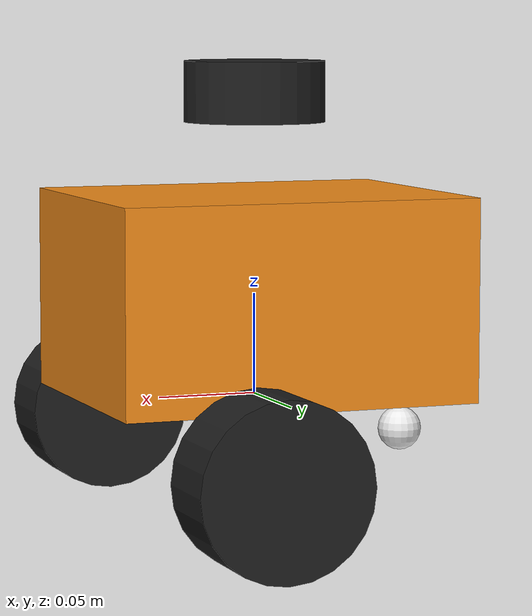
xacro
<?xml version="1.0"?>
<!-- Basic differential drive mobile base -->
<robot xmlns:xacro="http://www.ros.org/wiki/xacro" name="diffdrive_robot">
  <xacro:arg name="prefix" default="" />

  <xacro:include filename="$(find kuzya_bot)/urdf/diffbot_description.urdf.xacro" />

  <!-- Import Rviz colors -->
  <xacro:include filename="$(find kuzya_bot)/urdf/diffbot.materials.xacro" />

  <!-- Import diffbot ros2_control description -->
  <xacro:include filename="$(find kuzya_bot)/ros2_control/diffbot.ros2_control.xacro" />

  <xacro:diffbot prefix="$(arg prefix)" />

  <xacro:diffbot_ros2_control
    name="DiffBot" prefix="$(arg prefix)" />

</robot>

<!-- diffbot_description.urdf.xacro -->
<robot xmlns:xacro="http://www.ros.org/wiki/xacro">

  <xacro:macro name="diffbot" params="prefix">

  <!-- Constants for robot dimensions -->
  <xacro:property name="PI" value="3.1415926535897931"/>
  <xacro:property name="base_mass" value="0.3" /> <!-- arbitrary value for base mass -->
  <xacro:property name="base_width" value="0.18" />
  <xacro:property name="base_length" value="0.14" />
  <xacro:property name="base_height" value="0.1" />
  <xacro:property name="wheel_mass" value="0.3" /> <!-- arbitrary value for wheel mass -->
  <xacro:property name="wheel_len" value="0.040" />
  <xacro:property name="wheel_radius" value="0.042" />
  <xacro:property name="caster_wheel_mass" value="0.1" /> <!-- arbitrary value for caster wheel mass -->
  <xacro:property name="caster_wheel_radius" value="0.011" />
  <xacro:property name="z_offset" value="-0.022" /> <!-- Space btw top of beam and the each joint -->
  <xacro:property name="wheel_x_offset" value="0.04" />
  <xacro:property name="wheel_y_offset" value="0.03" />

  <!-- Base Link -->
  <link name="${prefix}base_link">
    <collision>
      <origin xyz="0 0 0" rpy="0 0 0"/>
      <geometry>
        <box size="${base_width} ${base_length} ${base_height}"/>
      </geometry>
    </collision>

    <visual>
      <origin xyz="0 0 ${base_height/2}" rpy="0 0 0"/>
      <geometry>
        <box size="${base_width} ${base_length} ${base_height}"/>
      </geometry>
      <material name="orange"/>
    </visual>

    <inertial>
      <origin xyz="0 0 0" rpy="0 0 0"/>
      <mass value="${base_mass}"/>
      <inertia
        ixx="${base_mass / 12.0 * (base_length*base_length + base_height*base_height)}" ixy="0.0" ixz="0.0"
        iyy="${base_mass / 12.0 * (base_height*base_height + base_width*base_width)}" iyz="0.0"
        izz="${base_mass / 12.0 * (base_width*base_width + base_length*base_length)}"/>
      </inertial>
    </link>

    <joint name="${prefix}left_wheel_joint" type="continuous">
      <parent link="${prefix}base_link"/>
      <child link="${prefix}left_wheel"/>
      <origin xyz="${wheel_x_offset} -${wheel_x_offset+base_width/2} ${z_offset}" rpy="0 0 0"/>
      <axis xyz="0 1 0"/>
      <dynamics damping="0.2"/>
      <limit effort="100" velocity="1.0"/>
    </joint>

    <!-- left wheel Link -->
    <link name="${prefix}left_wheel">
      <collision>
        <origin xyz="0 0 0" rpy="${PI/2} 0 0"/>
        <geometry>
          <cylinder length="${wheel_len}" radius="${wheel_radius}"/>
        </geometry>
      </collision>

      <visual>
        <origin xyz="0 0 0" rpy="${PI/2} 0 0"/>
        <geometry>
          <cylinder length="${wheel_len}" radius="${wheel_radius}"/>
        </geometry>
        <material name="black"/>
      </visual>

      <inertial>
        <origin xyz="0 0 0" rpy="${PI/2} 0 0"/>
        <mass value="${wheel_mass}"/>
        <inertia
          ixx="${wheel_mass / 12.0 * (3*wheel_radius*wheel_radius + wheel_len*wheel_len)}" ixy="0.0" ixz="0.0"
          iyy="${wheel_mass / 12.0 * (3*wheel_radius*wheel_radius + wheel_len*wheel_len)}" iyz="0.0"
          izz="${wheel_mass / 2.0 * wheel_radius*wheel_radius}"/>
        </inertial>
      </link>

    <joint name="${prefix}right_wheel_joint" type="continuous">
      <parent link="${prefix}base_link"/>
      <child link="${prefix}right_wheel"/>
      <origin xyz="${wheel_x_offset} ${wheel_x_offset+base_width/2} ${z_offset}" rpy="0 0 0"/>
      <axis xyz="0 1 0"/>
      <dynamics damping="0.2"/>
      <limit effort="100" velocity="1.0"/>
    </joint>

    <!-- right wheel Link -->
    <link name="${prefix}right_wheel">
      <collision>
        <origin xyz="0 0 0" rpy="${PI/2} 0 0"/>
        <geometry>
          <cylinder length="${wheel_len}" radius="${wheel_radius}"/>
        </geometry>
      </collision>

      <visual>
        <origin xyz="0 0 0" rpy="${PI/2} 0 0"/>
        <geometry>
          <cylinder length="${wheel_len}" radius="${wheel_radius}"/>
        </geometry>
        <material name="black"/>
      </visual>

      <inertial>
        <origin xyz="0 0 0" rpy="${PI/2} 0 0"/>
        <mass value="${wheel_mass}"/>
        <inertia
          ixx="${wheel_mass / 12.0 * (3*wheel_radius*wheel_radius + wheel_len*wheel_len)}" ixy="0.0" ixz="0.0"
          iyy="${wheel_mass / 12.0 * (3*wheel_radius*wheel_radius + wheel_len*wheel_len)}" iyz="0.0"
          izz="${wheel_mass / 2.0 * wheel_radius*wheel_radius}"/>
      </inertial>
    </link>

    <joint name="${prefix}caster_rear_wheel_joint" type="fixed">
      <parent link="${prefix}base_link"/>
      <child link="${prefix}caster_rear_wheel"/>
      <origin xyz="${-base_width/2 + caster_wheel_radius} 0 ${z_offset}" rpy="0 0 0"/>
    </joint>

    <!-- caster rear wheel Link -->
    <link name="${prefix}caster_rear_wheel">
      <collision>
        <origin xyz="0 0 0" rpy="0 0 0"/>
        <geometry>
          <sphere radius="${caster_wheel_radius}"/>
        </geometry>
      </collision>

      <visual>
        <origin xyz="0 0 0" rpy="0 0 0"/>
        <geometry>
          <sphere radius="${caster_wheel_radius}"/>
        </geometry>
        <material name="white"/>
      </visual>

      <inertial>
        <origin xyz="0 0 0" rpy="0 0 0"/>
        <mass value="${caster_wheel_mass}"/>
        <inertia
          ixx="${caster_wheel_mass * 0.4 * (caster_wheel_radius * caster_wheel_radius)}" ixy="0.0" ixz="0.0"
          iyy="${caster_wheel_mass * 0.4 * (caster_wheel_radius * caster_wheel_radius)}" iyz="0.0"
          izz="${caster_wheel_mass * 0.4 * (caster_wheel_radius * caster_wheel_radius)}"/>
        </inertial>
      </link>
<!-- LIDAR Link -->
  <link name="${prefix}base_laser">
    <visual>
      <geometry>
        <cylinder radius="0.035" length="0.030"/>
      </geometry>
      <origin xyz="0 0 0" rpy="0 0 0"/>
      <material name="black"/>
    </visual>
    <collision>
      <geometry>
        <cylinder radius="0.035" length="0.030"/>
      </geometry>
      <origin xyz="0 0 0" rpy="0 0 0"/>
    </collision>
    <inertial>
      <mass value="0.125"/>
      <inertia ixx="0.001" ixy="0" ixz="0" iyy="0.001" iyz="0" izz="0.001"/>
    </inertial>
  </link>

  <joint name="${prefix}lidar_joint" type="fixed">
    <parent link="base_link"/>
    <child link="base_laser"/>
    <origin xyz="0 0 0.15" rpy="0 0 0"/>
  </joint>

  </xacro:macro>

</robot>
